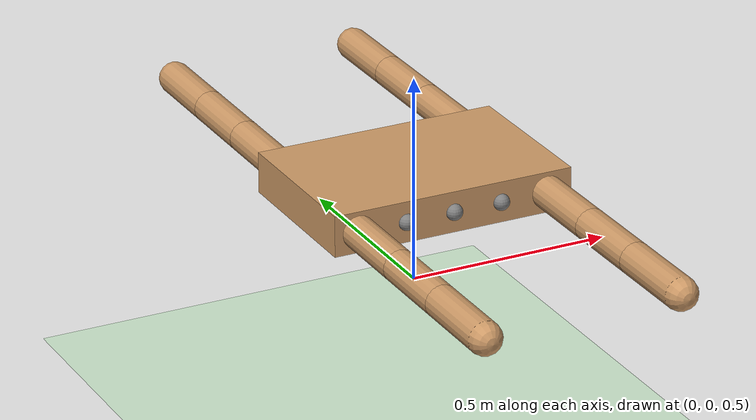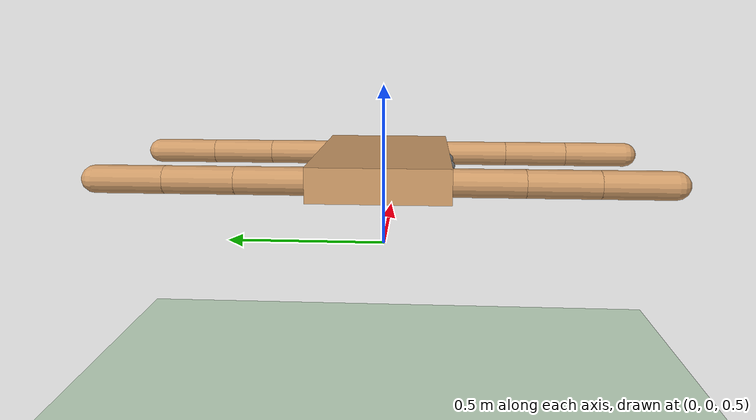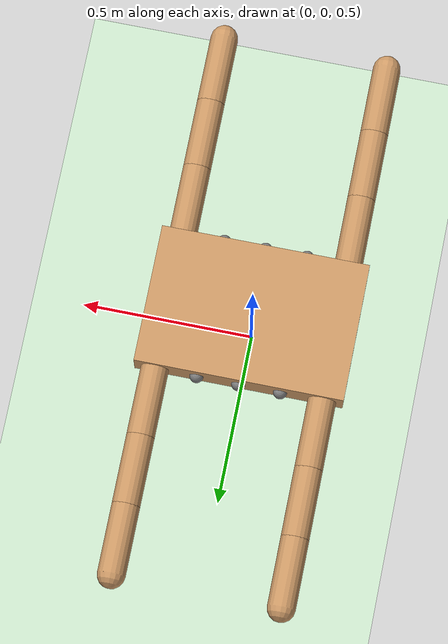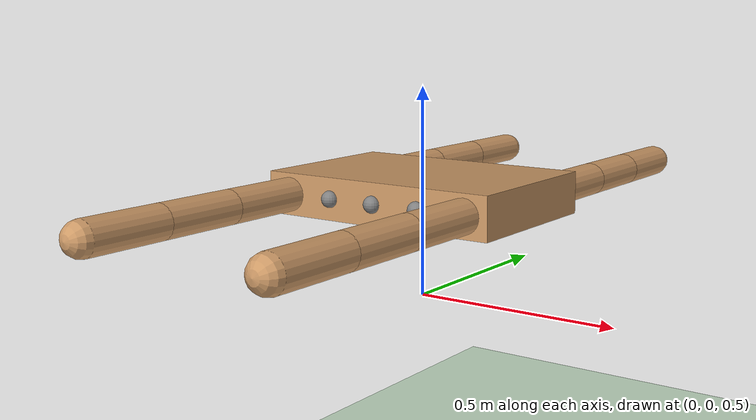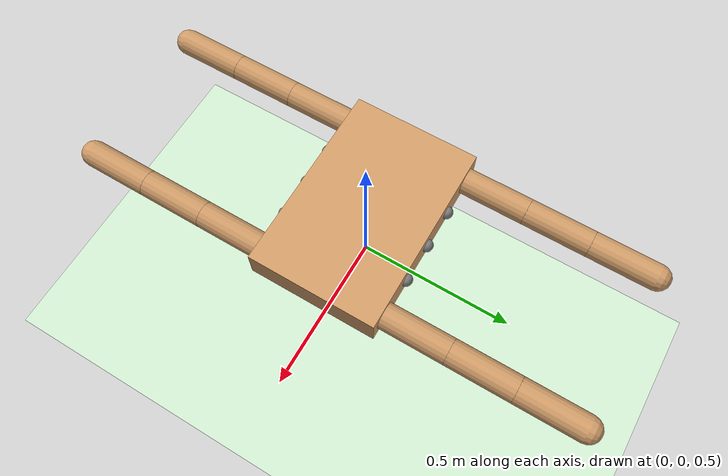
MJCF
<?xml version='1.0' encoding='UTF-8'?>
<mujoco model="kawaru">
  <compiler angle="degree" coordinate="local" inertiafromgeom="true"/>
  <option integrator="RK4" timestep="0.01"/>
  <default>
    <default class="kawaru">
      <!-- This globaly disables all collisions. -->
      <geom condim="1" contype="0" conaffinity="0" density="5.0" friction="1 0.5 0.5" margin="0.01" rgba="0.8 0.6 0.4 1"/>
    </default>
    <joint armature="1" damping="1" limited="true"/>
    <site type="sphere" size="0.02" rgba="0.5 0.5 0.5 1"/>
  </default>
  <asset>
    <texture name="skybox" type="skybox" builtin="gradient" rgb1=".4 .6 .8" rgb2="0 0 0" width="800" height="800" mark="random" markrgb="1 1 1"/>
    <texture builtin="gradient" height="80" rgb1="1 1 1" rgb2="0 0 0" type="skybox" width="80"/>
    <texture builtin="flat" height="1278" mark="cross" markrgb="1 1 1" name="texgeom" random="0.01" rgb1="0.8 0.6 0.4" rgb2="0.8 0.6 0.4" type="cube" width="127"/>
    <texture builtin="checker" height="80" name="texplane" rgb1="0 0 0" rgb2="0.8 0.8 0.8" type="2d" width="80"/>
    <material name="MatPlane" reflectance="0.5" shininess="1" specular="1" texrepeat="60 60" texture="texplane"/>
    <material name="geom" texture="texgeom" texuniform="true"/>
  </asset>
  <worldbody>
    <body name="base" pos="0 0 0.75" childclass="kawaru">
      <camera name="base_camera_1" mode="trackcom" pos="0 -1 0.3" xyaxes="1 0 0 0 0 1"/>
      <geom name="base_geom_1" pos="0 0 0" size="0.3 0.2 0.05" type="box"/>
      <freejoint/>
      <site name="base_site_1" pos="-0.24 0.2 0.0"/>
      <site name="base_site_2" pos="-0.12 0.2 0.0"/>
      <site name="base_site_3" pos="0.0 0.2 0.0"/>
      <site name="base_site_4" pos="0.12 0.2 0.0"/>
      <site name="base_site_5" pos="0.24 0.2 0.0"/>
      <site name="base_site_6" pos="-0.24 -0.2 0.0"/>
      <site name="base_site_7" pos="-0.12 -0.2 0.0"/>
      <site name="base_site_8" pos="0.0 -0.2 0.0"/>
      <site name="base_site_9" pos="0.12 -0.2 0.0"/>
      <site name="base_site_10" pos="0.24 -0.2 0.0"/>
      <site name="imu" pos="0. 0. 0."/>
      <body name="L1_D1" pos="0.24 0.2 0">
        <joint axis="1 0 0" name="L1_D1_joint_1" pos="0.0 0.0 0.0" range="-180 180" type="hinge"/>
        <geom fromto="0.0 0.0 0.0 0. 0.2 0.0" name="L1_D1_geom_1" size="0.04" type="capsule"/>
        <body pos="0.0 0.2 0.0" name="L1_D2">
          <joint axis="0 0 1" name="L1_D2_joint_1" pos="0.0 0.0 0.0" range="-180 180" type="hinge"/>
          <geom fromto="0.0 0.0 0.0 0. 0.2 0.0" name="L1_D2_geom_1" size="0.04" type="capsule"/>
          <body pos="0.0 0.2 0.0" name="L1_D3">
            <joint axis="0 0 1" name="L1_D3_joint_1" pos="0.0 0.0 0.0" range="-180 180" type="hinge"/>
            <geom fromto="0.0 0.0 0.0 0. 0.2 0.0" name="L1_D3_geom_1" size="0.04" type="capsule" contype="0" conaffinity="1"/>
          </body>
        </body>
      </body>
      <body name="L2_D1" pos="-0.24 0.2 0">
        <joint axis="1 0 0" name="L2_D1_joint_1" pos="0.0 0.0 0.0" range="-180 180" type="hinge"/>
        <geom fromto="0.0 0.0 0.0 0. 0.2 0.0" name="L2_D1_geom_1" size="0.04" type="capsule"/>
        <body pos="0.0 0.2 0.0" name="L2_D2">
          <joint axis="0 0 1" name="L2_D2_joint_1" pos="0.0 0.0 0.0" range="-180 180" type="hinge"/>
          <geom fromto="0.0 0.0 0.0 0. 0.2 0.0" name="L2_D2_geom_1" size="0.04" type="capsule"/>
          <body pos="0.0 0.2 0.0" name="L2_D3">
            <joint axis="0 0 1" name="L2_D3_joint_1" pos="0.0 0.0 0.0" range="-180 180" type="hinge"/>
            <geom fromto="0.0 0.0 0.0 0. 0.2 0.0" name="L2_D3_geom_1" size="0.04" type="capsule" contype="0" conaffinity="1"/>
          </body>
        </body>
      </body>
      <body name="L3_D1" pos="-0.24 -0.2 0">
        <joint axis="-1 0 0" name="L3_D1_joint_1" pos="0.0 0.0 0.0" range="-180 180" type="hinge"/>
        <geom fromto="0.0 0.0 0.0 0. -0.2 0.0" name="L3_D1_geom_1" size="0.04" type="capsule"/>
        <body pos="0.0 -0.2 0.0" name="L3_D2">
          <joint axis="0 0 -1" name="L3_D2_joint_1" pos="0.0 0.0 0.0" range="-180 180" type="hinge"/>
          <geom fromto="0.0 0.0 0.0 0. -0.2 0.0" name="L3_D2_geom_1" size="0.04" type="capsule"/>
          <body pos="0.0 -0.2 0.0" name="L3_D3">
            <joint axis="0 0 -1" name="L3_D3_joint_1" pos="0.0 0.0 0.0" range="-180 180" type="hinge"/>
            <geom fromto="0.0 0.0 0.0 0. -0.2 0.0" name="L3_D3_geom_1" size="0.04" type="capsule" contype="0" conaffinity="1"/>
          </body>
        </body>
      </body>
      <body name="L4_D1" pos="0.24 -0.2 0">
        <joint axis="-1 0 0" name="L4_D1_joint_1" pos="0.0 0.0 0.0" range="-180 180" type="hinge"/>
        <geom fromto="0.0 0.0 0.0 0. -0.2 0.0" name="L4_D1_geom_1" size="0.04" type="capsule"/>
        <body pos="0.0 -0.2 0.0" name="L4_D2">
          <joint axis="0 0 -1" name="L4_D2_joint_1" pos="0.0 0.0 0.0" range="-180 180" type="hinge"/>
          <geom fromto="0.0 0.0 0.0 0. -0.2 0.0" name="L4_D2_geom_1" size="0.04" type="capsule"/>
          <body pos="0.0 -0.2 0.0" name="L4_D3">
            <joint axis="0 0 -1" name="L4_D3_joint_1" pos="0.0 0.0 0.0" range="-180 180" type="hinge"/>
            <geom fromto="0.0 0.0 0.0 0. -0.2 0.0" name="L4_D3_geom_1" size="0.04" type="capsule" contype="0" conaffinity="1"/>
          </body>
        </body>
      </body>
    </body>
    <light cutoff="30" diffuse="1 1 1" dir="-0 0 -1.3" directional="true" exponent="1" pos="0 0 1.3" specular=".1 .1 .1"/>
    <geom conaffinity="1" condim="3" material="MatPlane" name="worldbody_geom_1" pos="0 0 0" rgba="0.8 0.9 0.8 1" size="40 40 40" type="plane"/>
  </worldbody>
  <actuator>
    <position joint="L1_D1_joint_1" name="L1_D1_joint_1_actuator" kp="100" kv="10" ctrlrange="-2 2"/>
    <position joint="L1_D2_joint_1" name="L1_D2_joint_1_actuator" kp="100" kv="10" ctrlrange="-2 2"/>
    <position joint="L1_D3_joint_1" name="L1_D3_joint_1_actuator" kp="100" kv="10" ctrlrange="-2 2"/>
    <position joint="L2_D1_joint_1" name="L2_D1_joint_1_actuator" kp="100" kv="10" ctrlrange="-2 2"/>
    <position joint="L2_D2_joint_1" name="L2_D2_joint_1_actuator" kp="100" kv="10" ctrlrange="-2 2"/>
    <position joint="L2_D3_joint_1" name="L2_D3_joint_1_actuator" kp="100" kv="10" ctrlrange="-2 2"/>
    <position joint="L3_D1_joint_1" name="L3_D1_joint_1_actuator" kp="100" kv="10" ctrlrange="-2 2"/>
    <position joint="L3_D2_joint_1" name="L3_D2_joint_1_actuator" kp="100" kv="10" ctrlrange="-2 2"/>
    <position joint="L3_D3_joint_1" name="L3_D3_joint_1_actuator" kp="100" kv="10" ctrlrange="-2 2"/>
    <position joint="L4_D1_joint_1" name="L4_D1_joint_1_actuator" kp="100" kv="10" ctrlrange="-2 2"/>
    <position joint="L4_D2_joint_1" name="L4_D2_joint_1_actuator" kp="100" kv="10" ctrlrange="-2 2"/>
    <position joint="L4_D3_joint_1" name="L4_D3_joint_1_actuator" kp="100" kv="10" ctrlrange="-2 2"/>
  </actuator>

  <sensor>
    <gyro site="imu" name="gyro"/>
    <velocimeter site="imu" name="local_linvel"/>
    <accelerometer site="imu" name="accelerometer"/>
    <framepos objtype="site" objname="imu" name="position"/>
    <framezaxis objtype="site" objname="imu" name="upvector"/>
    <framexaxis objtype="site" objname="imu" name="forwardvector"/>
    <framelinvel objtype="site" objname="imu" name="global_linvel"/>
    <frameangvel objtype="site" objname="imu" name="global_angvel"/>
    <framequat objtype="site" objname="imu" name="orientation"/>
  </sensor>
</mujoco>
